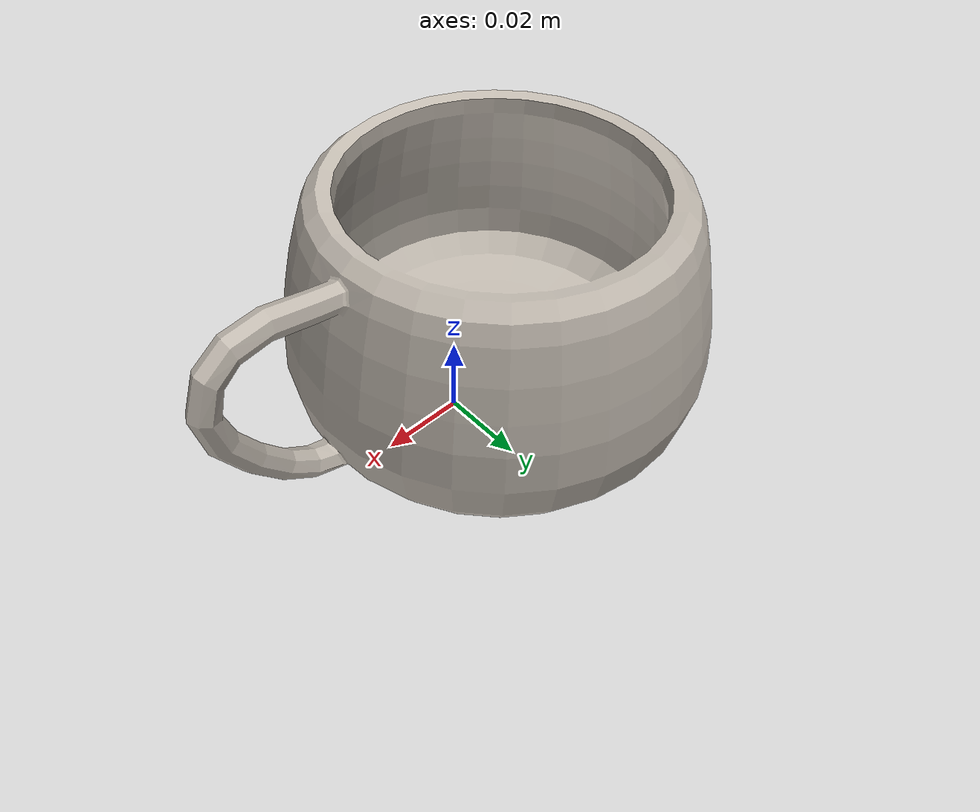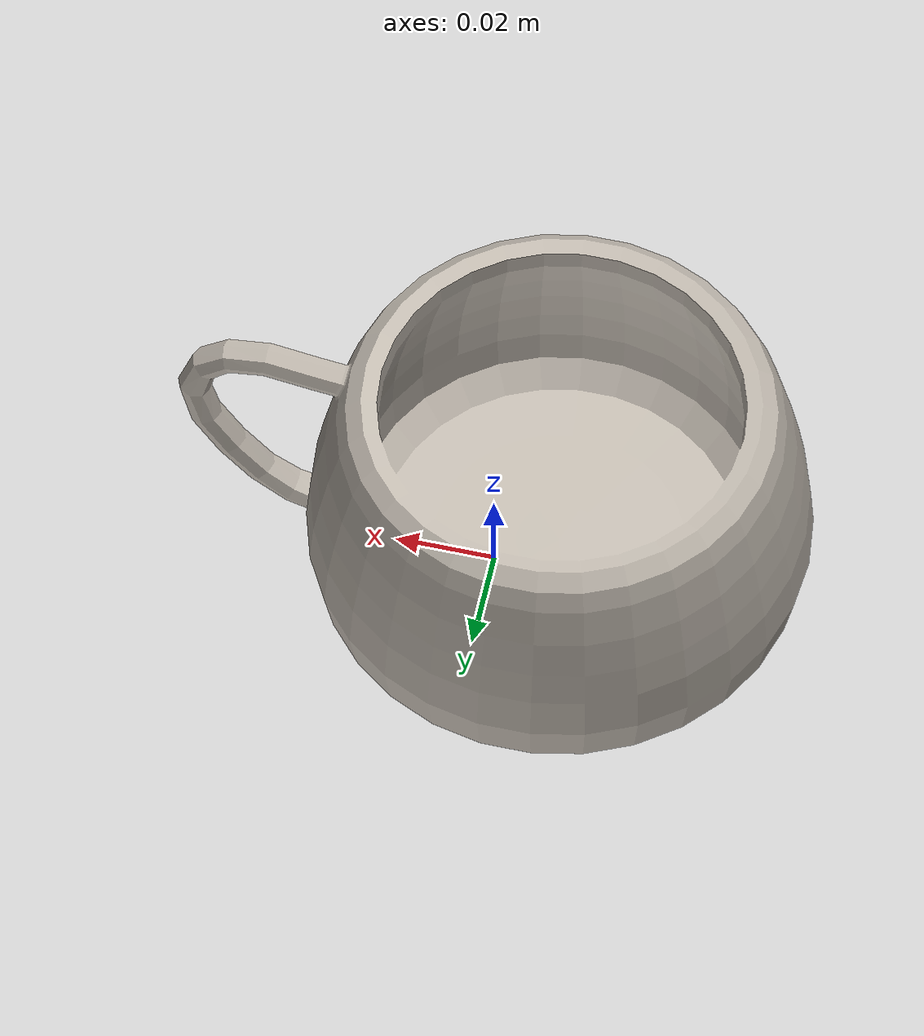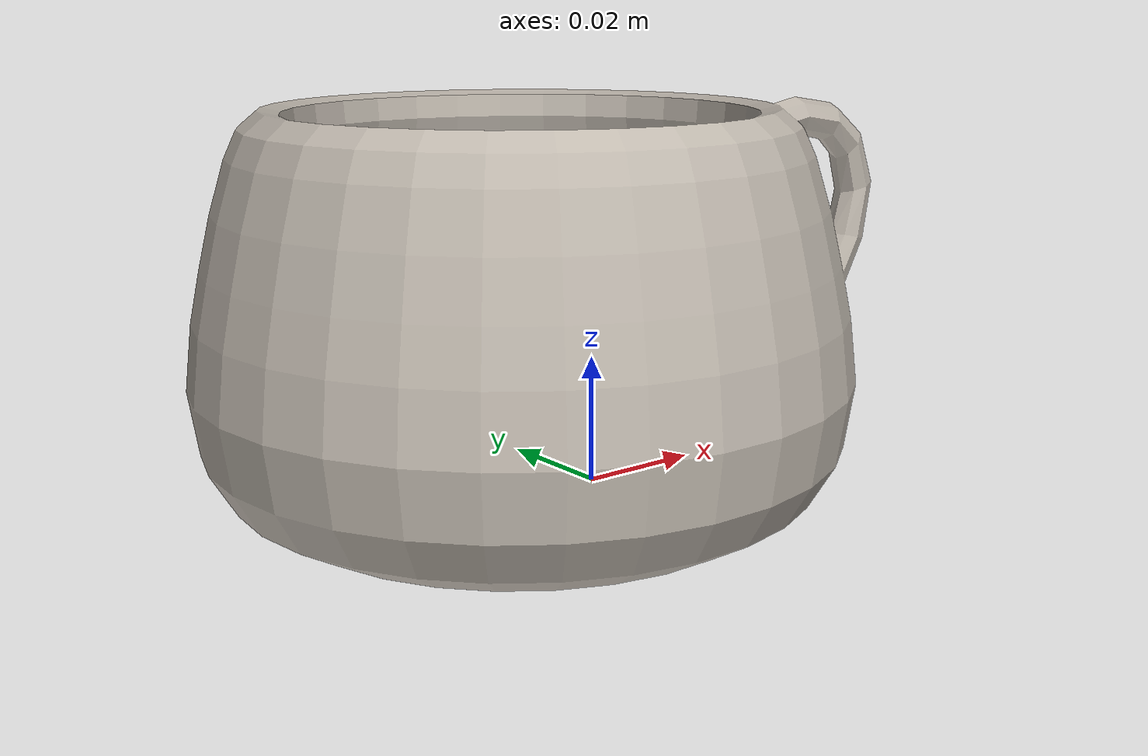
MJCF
<mujoco model="mug_17">
  <compiler angle="radian"/>
  <default>
    <default class="visual">
      <geom group="1" type="mesh" contype="0" conaffinity="0" mass="0.01"/>
    </default>
    <default class="collision">
      <geom group="0" solimp="0.998 0.998 0.001" solref="0.001 2" mass="0.01"/>
    </default>
    <default class="keypoint">
      <site type="sphere" size="0.01" group="3" rgba="1 0 0 1"/>
    </default>
    <default class="grasppoint">
      <site type="sphere" size="0.01" group="4" rgba="0 0 1 0.2"/>
    </default>
  </default>
  <asset>
    <mesh file="visual/model_normalized_0.obj" name="model_normalized_0_vis" scale="0.125 0.125 0.125" refquat="0.7071067811865472 0.0 0.0 0.7071067811865476"/>
    <mesh file="collision/model_normalized_collision_22.obj" name="model_normalized_collision_22._coll" scale="0.125 0.125 0.125" refquat="0.7071067811865472 0.0 0.0 0.7071067811865476"/>
    <mesh file="collision/model_normalized_collision_23.obj" name="model_normalized_collision_23._coll" scale="0.125 0.125 0.125" refquat="0.7071067811865472 0.0 0.0 0.7071067811865476"/>
    <mesh file="collision/model_normalized_collision_21.obj" name="model_normalized_collision_21._coll" scale="0.125 0.125 0.125" refquat="0.7071067811865472 0.0 0.0 0.7071067811865476"/>
    <mesh file="collision/model_normalized_collision_20.obj" name="model_normalized_collision_20._coll" scale="0.125 0.125 0.125" refquat="0.7071067811865472 0.0 0.0 0.7071067811865476"/>
    <mesh file="collision/model_normalized_collision_24.obj" name="model_normalized_collision_24._coll" scale="0.125 0.125 0.125" refquat="0.7071067811865472 0.0 0.0 0.7071067811865476"/>
    <mesh file="collision/model_normalized_collision_30.obj" name="model_normalized_collision_30._coll" scale="0.125 0.125 0.125" refquat="0.7071067811865472 0.0 0.0 0.7071067811865476"/>
    <mesh file="collision/model_normalized_collision_18.obj" name="model_normalized_collision_18._coll" scale="0.125 0.125 0.125" refquat="0.7071067811865472 0.0 0.0 0.7071067811865476"/>
    <mesh file="collision/model_normalized_collision_19.obj" name="model_normalized_collision_19._coll" scale="0.125 0.125 0.125" refquat="0.7071067811865472 0.0 0.0 0.7071067811865476"/>
    <mesh file="collision/model_normalized_collision_31.obj" name="model_normalized_collision_31._coll" scale="0.125 0.125 0.125" refquat="0.7071067811865472 0.0 0.0 0.7071067811865476"/>
    <mesh file="collision/model_normalized_collision_25.obj" name="model_normalized_collision_25._coll" scale="0.125 0.125 0.125" refquat="0.7071067811865472 0.0 0.0 0.7071067811865476"/>
    <mesh file="collision/model_normalized_collision_27.obj" name="model_normalized_collision_27._coll" scale="0.125 0.125 0.125" refquat="0.7071067811865472 0.0 0.0 0.7071067811865476"/>
    <mesh file="collision/model_normalized_collision_26.obj" name="model_normalized_collision_26._coll" scale="0.125 0.125 0.125" refquat="0.7071067811865472 0.0 0.0 0.7071067811865476"/>
    <mesh file="collision/model_normalized_collision_9.obj" name="model_normalized_collision_9._coll" scale="0.125 0.125 0.125" refquat="0.7071067811865472 0.0 0.0 0.7071067811865476"/>
    <mesh file="collision/model_normalized_collision_8.obj" name="model_normalized_collision_8._coll" scale="0.125 0.125 0.125" refquat="0.7071067811865472 0.0 0.0 0.7071067811865476"/>
    <mesh file="collision/model_normalized_collision_6.obj" name="model_normalized_collision_6._coll" scale="0.125 0.125 0.125" refquat="0.7071067811865472 0.0 0.0 0.7071067811865476"/>
    <mesh file="collision/model_normalized_collision_7.obj" name="model_normalized_collision_7._coll" scale="0.125 0.125 0.125" refquat="0.7071067811865472 0.0 0.0 0.7071067811865476"/>
    <mesh file="collision/model_normalized_collision_5.obj" name="model_normalized_collision_5._coll" scale="0.125 0.125 0.125" refquat="0.7071067811865472 0.0 0.0 0.7071067811865476"/>
    <mesh file="collision/model_normalized_collision_4.obj" name="model_normalized_collision_4._coll" scale="0.125 0.125 0.125" refquat="0.7071067811865472 0.0 0.0 0.7071067811865476"/>
    <mesh file="collision/model_normalized_collision_0.obj" name="model_normalized_collision_0._coll" scale="0.125 0.125 0.125" refquat="0.7071067811865472 0.0 0.0 0.7071067811865476"/>
    <mesh file="collision/model_normalized_collision_1.obj" name="model_normalized_collision_1._coll" scale="0.125 0.125 0.125" refquat="0.7071067811865472 0.0 0.0 0.7071067811865476"/>
    <mesh file="collision/model_normalized_collision_3.obj" name="model_normalized_collision_3._coll" scale="0.125 0.125 0.125" refquat="0.7071067811865472 0.0 0.0 0.7071067811865476"/>
    <mesh file="collision/model_normalized_collision_2.obj" name="model_normalized_collision_2._coll" scale="0.125 0.125 0.125" refquat="0.7071067811865472 0.0 0.0 0.7071067811865476"/>
    <mesh file="collision/model_normalized_collision_17.obj" name="model_normalized_collision_17._coll" scale="0.125 0.125 0.125" refquat="0.7071067811865472 0.0 0.0 0.7071067811865476"/>
    <mesh file="collision/model_normalized_collision_16.obj" name="model_normalized_collision_16._coll" scale="0.125 0.125 0.125" refquat="0.7071067811865472 0.0 0.0 0.7071067811865476"/>
    <mesh file="collision/model_normalized_collision_28.obj" name="model_normalized_collision_28._coll" scale="0.125 0.125 0.125" refquat="0.7071067811865472 0.0 0.0 0.7071067811865476"/>
    <mesh file="collision/model_normalized_collision_14.obj" name="model_normalized_collision_14._coll" scale="0.125 0.125 0.125" refquat="0.7071067811865472 0.0 0.0 0.7071067811865476"/>
    <mesh file="collision/model_normalized_collision_15.obj" name="model_normalized_collision_15._coll" scale="0.125 0.125 0.125" refquat="0.7071067811865472 0.0 0.0 0.7071067811865476"/>
    <mesh file="collision/model_normalized_collision_29.obj" name="model_normalized_collision_29._coll" scale="0.125 0.125 0.125" refquat="0.7071067811865472 0.0 0.0 0.7071067811865476"/>
    <mesh file="collision/model_normalized_collision_11.obj" name="model_normalized_collision_11._coll" scale="0.125 0.125 0.125" refquat="0.7071067811865472 0.0 0.0 0.7071067811865476"/>
    <mesh file="collision/model_normalized_collision_10.obj" name="model_normalized_collision_10._coll" scale="0.125 0.125 0.125" refquat="0.7071067811865472 0.0 0.0 0.7071067811865476"/>
    <mesh file="collision/model_normalized_collision_12.obj" name="model_normalized_collision_12._coll" scale="0.125 0.125 0.125" refquat="0.7071067811865472 0.0 0.0 0.7071067811865476"/>
    <mesh file="collision/model_normalized_collision_13.obj" name="model_normalized_collision_13._coll" scale="0.125 0.125 0.125" refquat="0.7071067811865472 0.0 0.0 0.7071067811865476"/>
    <texture type="2d" name="image0" file="visual/image0.png"/>
    <material name="blinn1SG.001" texture="image0" specular="0.5" shininess="0.359999993"/>
  </asset>
  <worldbody>
  <body>
      <body name="object" euler="0 0 1.57" pos="0 0 0.03">
        <geom type="mesh" mesh="model_normalized_0_vis" class="visual" material="blinn1SG.001"/>
        <geom type="mesh" mesh="model_normalized_collision_22._coll" class="collision" rgba="0.8 0.8 0.8 0.0"/>
        <geom type="mesh" mesh="model_normalized_collision_23._coll" class="collision" rgba="0.8 0.8 0.8 0.0"/>
        <geom type="mesh" mesh="model_normalized_collision_21._coll" class="collision" rgba="0.8 0.8 0.8 0.0"/>
        <geom type="mesh" mesh="model_normalized_collision_20._coll" class="collision" rgba="0.8 0.8 0.8 0.0"/>
        <geom type="mesh" mesh="model_normalized_collision_24._coll" class="collision" rgba="0.8 0.8 0.8 0.0"/>
        <geom type="mesh" mesh="model_normalized_collision_30._coll" class="collision" rgba="0.8 0.8 0.8 0.0"/>
        <geom type="mesh" mesh="model_normalized_collision_18._coll" class="collision" rgba="0.8 0.8 0.8 0.0"/>
        <geom type="mesh" mesh="model_normalized_collision_19._coll" class="collision" rgba="0.8 0.8 0.8 0.0"/>
        <geom type="mesh" mesh="model_normalized_collision_31._coll" class="collision" rgba="0.8 0.8 0.8 0.0"/>
        <geom type="mesh" mesh="model_normalized_collision_25._coll" class="collision" rgba="0.8 0.8 0.8 0.0"/>
        <geom type="mesh" mesh="model_normalized_collision_27._coll" class="collision" rgba="0.8 0.8 0.8 0.0"/>
        <geom type="mesh" mesh="model_normalized_collision_26._coll" class="collision" rgba="0.8 0.8 0.8 0.0"/>
        <geom type="mesh" mesh="model_normalized_collision_9._coll" class="collision" rgba="0.8 0.8 0.8 0.0"/>
        <geom type="mesh" mesh="model_normalized_collision_8._coll" class="collision" rgba="0.8 0.8 0.8 0.0"/>
        <geom type="mesh" mesh="model_normalized_collision_6._coll" class="collision" rgba="0.8 0.8 0.8 0.0"/>
        <geom type="mesh" mesh="model_normalized_collision_7._coll" class="collision" rgba="0.8 0.8 0.8 0.0"/>
        <geom type="mesh" mesh="model_normalized_collision_5._coll" class="collision" rgba="0.8 0.8 0.8 0.0"/>
        <geom type="mesh" mesh="model_normalized_collision_4._coll" class="collision" rgba="0.8 0.8 0.8 0.0"/>
        <geom type="mesh" mesh="model_normalized_collision_0._coll" class="collision" rgba="0.8 0.8 0.8 0.0"/>
        <geom type="mesh" mesh="model_normalized_collision_1._coll" class="collision" rgba="0.8 0.8 0.8 0.0"/>
        <geom type="mesh" mesh="model_normalized_collision_3._coll" class="collision" rgba="0.8 0.8 0.8 0.0"/>
        <geom type="mesh" mesh="model_normalized_collision_2._coll" class="collision" rgba="0.8 0.8 0.8 0.0"/>
        <geom type="mesh" mesh="model_normalized_collision_17._coll" class="collision" rgba="0.8 0.8 0.8 0.0"/>
        <geom type="mesh" mesh="model_normalized_collision_16._coll" class="collision" rgba="0.8 0.8 0.8 0.0"/>
        <geom type="mesh" mesh="model_normalized_collision_28._coll" class="collision" rgba="0.8 0.8 0.8 0.0"/>
        <geom type="mesh" mesh="model_normalized_collision_14._coll" class="collision" rgba="0.8 0.8 0.8 0.0"/>
        <geom type="mesh" mesh="model_normalized_collision_15._coll" class="collision" rgba="0.8 0.8 0.8 0.0"/>
        <geom type="mesh" mesh="model_normalized_collision_29._coll" class="collision" rgba="0.8 0.8 0.8 0.0"/>
        <geom type="mesh" mesh="model_normalized_collision_11._coll" class="collision" rgba="0.8 0.8 0.8 0.0"/>
        <geom type="mesh" mesh="model_normalized_collision_10._coll" class="collision" rgba="0.8 0.8 0.8 0.0"/>
        <geom type="mesh" mesh="model_normalized_collision_12._coll" class="collision" rgba="0.8 0.8 0.8 0.0"/>
        <geom type="mesh" mesh="model_normalized_collision_13._coll" class="collision" rgba="0.8 0.8 0.8 0.0"/>
      </body>
      <site rgba="0 0 0 0" size="0.005" pos="-9.03962499999994e-05 -1.1186874999999374e-05 -0.02978679" name="bottom_site"/>
      <site rgba="0 0 0 0" size="0.005" pos="-9.03962499999994e-05 -1.1186874999999374e-05 0.029148576249999995" name="top_site"/>
      <site rgba="0 0 0 0" size="0.005" pos="0.04830369125 0.0614423725 -0.00031910687500000083" name="horizontal_radius_site"/>
      <site class="grasppoint" pos="0.06 0 0.04"/>
    </body>
    </worldbody>
</mujoco>
